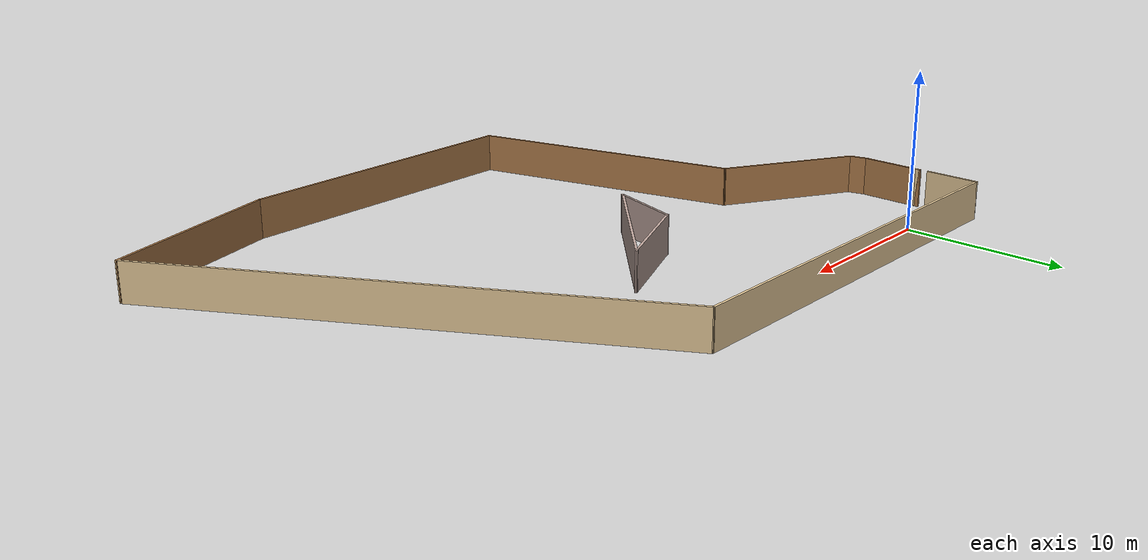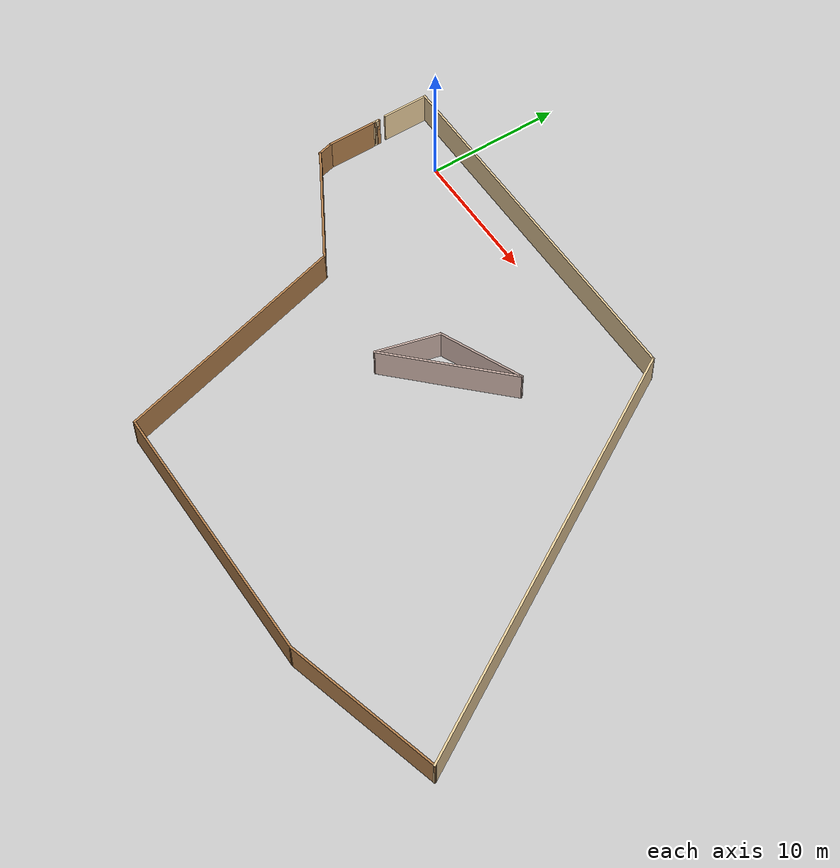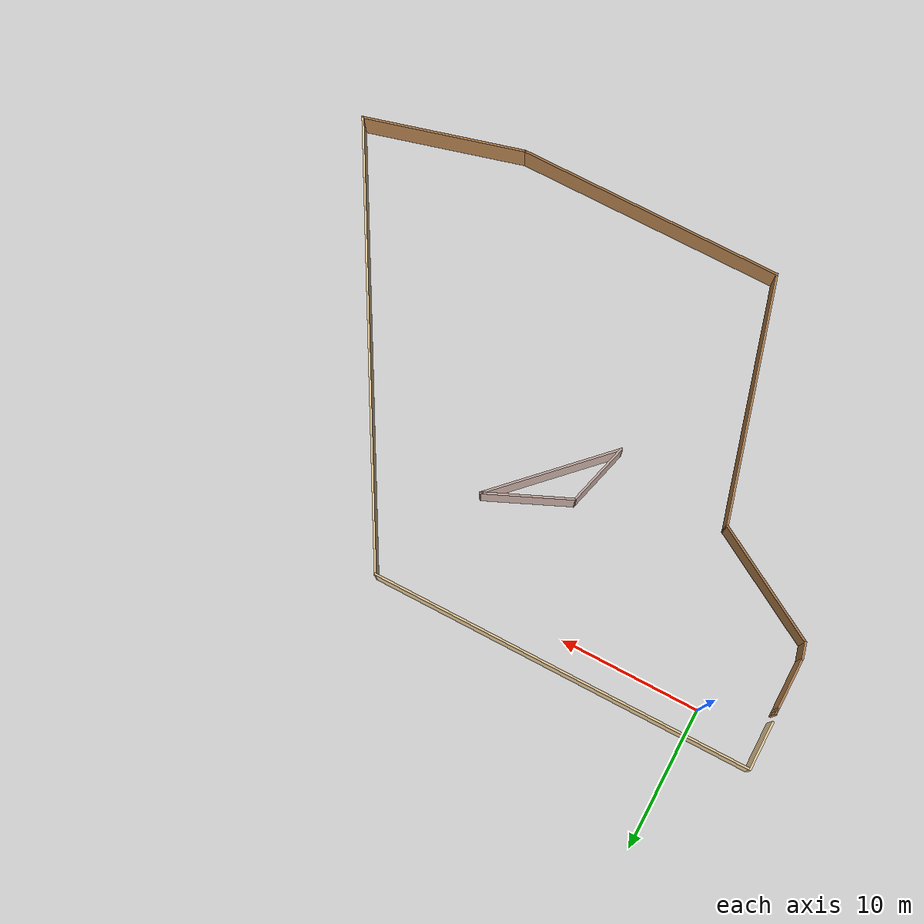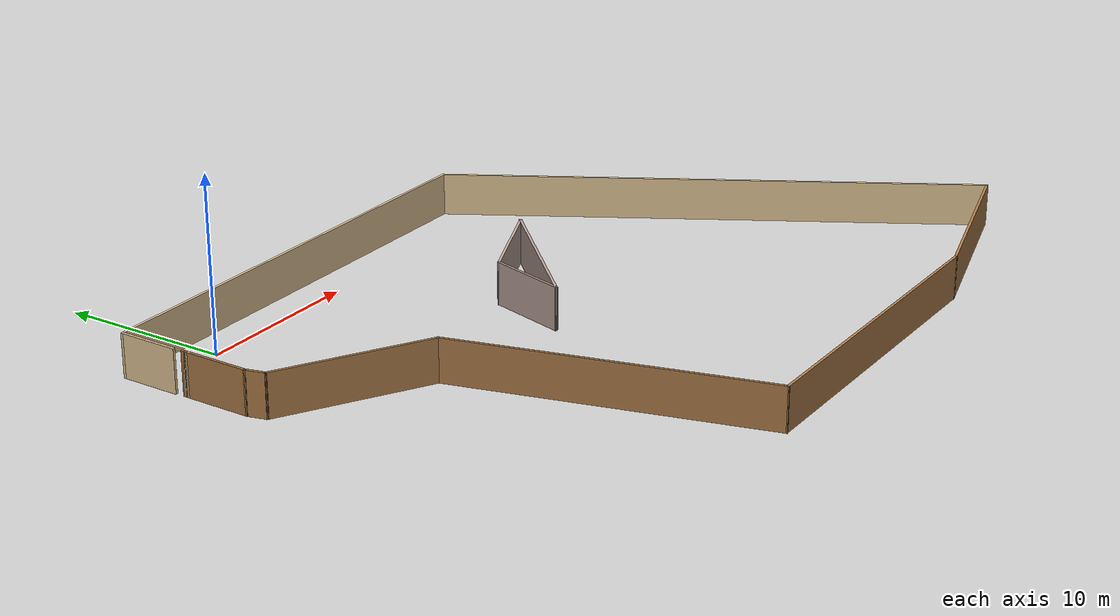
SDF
<?xml version='1.0'?>
<sdf version='1.7'>
  <model name='pigeonHead-shaped-room'>
    <pose>17.1981 -13.3504 0 0 -0 0</pose>
    <link name='Wall_0'>
      <collision name='Wall_0_Collision'>
        <geometry>
          <box>
            <size>3.5 0.15 2.5</size>
          </box>
        </geometry>
        <pose>0 0 1.25 0 -0 0</pose>
      </collision>
      <visual name='Wall_0_Visual'>
        <pose>0 0 1.25 0 -0 0</pose>
        <geometry>
          <box>
            <size>3.5 0.15 2.5</size>
          </box>
        </geometry>
        <material>
          <script>
            <uri>file://media/materials/scripts/gazebo.material</uri>
            <name>Gazebo/Grey</name>
          </script>
          <ambient>0.921569 0.807843 0.615686 1</ambient>
        </material>
        <meta>
          <layer>0</layer>
        </meta>
      </visual>
      <pose>-21.7137 13.7206 0 0 -0 1.5708</pose>
    </link>
    <link name='Wall_1'>
      <collision name='Wall_1_Collision'>
        <geometry>
          <box>
            <size>27.5 0.15 2.5</size>
          </box>
        </geometry>
        <pose>0 0 1.25 0 -0 0</pose>
      </collision>
      <visual name='Wall_1_Visual'>
        <pose>0 0 1.25 0 -0 0</pose>
        <geometry>
          <box>
            <size>27.5 0.15 2.5</size>
          </box>
        </geometry>
        <material>
          <script>
            <uri>file://media/materials/scripts/gazebo.material</uri>
            <name>Gazebo/Grey</name>
          </script>
          <ambient>0.921569 0.807843 0.615686 1</ambient>
        </material>
        <meta>
          <layer>0</layer>
        </meta>
      </visual>
      <pose>-8.03873 15.3956 0 0 -0 0</pose>
    </link>
    <link name='Wall_10'>
      <collision name='Wall_10_Collision'>
        <geometry>
          <box>
            <size>0.25 0.15 2.5</size>
          </box>
        </geometry>
        <pose>0 0 1.25 0 -0 0</pose>
      </collision>
      <visual name='Wall_10_Visual'>
        <pose>0 0 1.25 0 -0 0</pose>
        <geometry>
          <box>
            <size>0.25 0.15 2.5</size>
          </box>
        </geometry>
        <material>
          <script>
            <uri>file://media/materials/scripts/gazebo.material</uri>
            <name>Gazebo/Wood</name>
          </script>
          <ambient>0.921569 0.807843 0.615686 1</ambient>
        </material>
        <meta>
          <layer>0</layer>
        </meta>
      </visual>
      <pose>-21.6539 11.1981 0 0 -0 1.5708</pose>
    </link>
    <link name='Wall_11'>
      <collision name='Wall_11_Collision'>
        <geometry>
          <box>
            <size>0.25 0.15 2.5</size>
          </box>
        </geometry>
        <pose>0 0 1.25 0 -0 0</pose>
      </collision>
      <visual name='Wall_11_Visual'>
        <pose>0 0 1.25 0 -0 0</pose>
        <geometry>
          <box>
            <size>0.25 0.15 2.5</size>
          </box>
        </geometry>
        <material>
          <script>
            <uri>file://media/materials/scripts/gazebo.material</uri>
            <name>Gazebo/Grey</name>
          </script>
          <ambient>0.921569 0.807843 0.615686 1</ambient>
        </material>
        <meta>
          <layer>0</layer>
        </meta>
      </visual>
      <pose>-21.6539 11.2981 0 0 -0 1.5708</pose>
    </link>
    <link name='Wall_12'>
      <collision name='Wall_12_Collision'>
        <geometry>
          <box>
            <size>0.25 0.15 2.5</size>
          </box>
        </geometry>
        <pose>0 0 1.25 0 -0 0</pose>
      </collision>
      <visual name='Wall_12_Visual'>
        <pose>0 0 1.25 0 -0 0</pose>
        <geometry>
          <box>
            <size>0.25 0.15 2.5</size>
          </box>
        </geometry>
        <material>
          <script>
            <uri>file://media/materials/scripts/gazebo.material</uri>
            <name>Gazebo/Wood</name>
          </script>
          <ambient>0.921569 0.807843 0.615686 1</ambient>
        </material>
        <meta>
          <layer>0</layer>
        </meta>
      </visual>
      <pose>-21.6539 11.3981 0 0 -0 1.5708</pose>
    </link>
    <link name='Wall_14'>
      <collision name='Wall_14_Collision'>
        <geometry>
          <box>
            <size>4.75 0.15 2.5</size>
          </box>
        </geometry>
        <pose>0 0 1.25 0 -0 0</pose>
      </collision>
      <visual name='Wall_14_Visual'>
        <pose>0 0 1.25 0 -0 0</pose>
        <geometry>
          <box>
            <size>4.75 0.15 2.5</size>
          </box>
        </geometry>
        <material>
          <script>
            <uri>file://media/materials/scripts/gazebo.material</uri>
            <name>Gazebo/Grey</name>
          </script>
          <ambient>0.760784 0.662745 0.627451 1</ambient>
        </material>
        <meta>
          <layer>0</layer>
        </meta>
      </visual>
      <pose>-4.33739 2.65717 0 0 -0 -1.8326</pose>
    </link>
    <link name='Wall_15'>
      <collision name='Wall_15_Collision'>
        <geometry>
          <box>
            <size>10 0.15 2.5</size>
          </box>
        </geometry>
        <pose>0 0 1.25 0 -0 0</pose>
      </collision>
      <visual name='Wall_15_Visual'>
        <pose>0 0 1.25 0 -0 0</pose>
        <geometry>
          <box>
            <size>10 0.15 2.5</size>
          </box>
        </geometry>
        <material>
          <script>
            <uri>file://media/materials/scripts/gazebo.material</uri>
            <name>Gazebo/Grey</name>
          </script>
          <ambient>0.760784 0.662745 0.627451 1</ambient>
        </material>
        <meta>
          <layer>0</layer>
        </meta>
      </visual>
      <pose>-1.45017 3.91805 0 0 -0 0.785398</pose>
    </link>
    <link name='Wall_16'>
      <collision name='Wall_16_Collision'>
        <geometry>
          <box>
            <size>6.45105 0.15 2.5</size>
          </box>
        </geometry>
        <pose>0 0 1.25 0 -0 0</pose>
      </collision>
      <visual name='Wall_16_Visual'>
        <pose>0 0 1.25 0 -0 0</pose>
        <geometry>
          <box>
            <size>6.45105 0.15 2.5</size>
          </box>
        </geometry>
        <material>
          <script>
            <uri>file://media/materials/scripts/gazebo.material</uri>
            <name>Gazebo/Grey</name>
          </script>
          <ambient>0.760784 0.662745 0.627451 1</ambient>
        </material>
        <meta>
          <layer>0</layer>
        </meta>
      </visual>
      <pose>-0.854887 6.13968 0 0 -0 -2.72985</pose>
    </link>
    <link name='Wall_2'>
      <collision name='Wall_2_Collision'>
        <geometry>
          <box>
            <size>32.25 0.15 2.5</size>
          </box>
        </geometry>
        <pose>0 0 1.25 0 -0 0</pose>
      </collision>
      <visual name='Wall_2_Visual'>
        <pose>0 0 1.25 0 -0 0</pose>
        <geometry>
          <box>
            <size>32.25 0.15 2.5</size>
          </box>
        </geometry>
        <material>
          <script>
            <uri>file://media/materials/scripts/gazebo.material</uri>
            <name>Gazebo/Grey</name>
          </script>
          <ambient>0.921569 0.807843 0.615686 1</ambient>
        </material>
        <meta>
          <layer>0</layer>
        </meta>
      </visual>
      <pose>13.6613 1.49585 0 0 -0 -1.0472</pose>
    </link>
    <link name='Wall_3'>
      <collision name='Wall_3_Collision'>
        <geometry>
          <box>
            <size>11.75 0.15 2.5</size>
          </box>
        </geometry>
        <pose>0 0 1.25 0 -0 0</pose>
      </collision>
      <visual name='Wall_3_Visual'>
        <pose>0 0 1.25 0 -0 0</pose>
        <geometry>
          <box>
            <size>11.75 0.15 2.5</size>
          </box>
        </geometry>
        <material>
          <script>
            <uri>file://media/materials/scripts/gazebo.material</uri>
            <name>Gazebo/Wood</name>
          </script>
          <ambient>0.921569 0.807843 0.615686 1</ambient>
        </material>
        <meta>
          <layer>0</layer>
        </meta>
      </visual>
      <pose>16.0839 -13.905 0 0 -0 -2.87979</pose>
    </link>
    <link name='Wall_4'>
      <collision name='Wall_4_Collision'>
        <geometry>
          <box>
            <size>19.5 0.15 2.5</size>
          </box>
        </geometry>
        <pose>0 0 1.25 0 -0 0</pose>
      </collision>
      <visual name='Wall_4_Visual'>
        <pose>0 0 1.25 0 -0 0</pose>
        <geometry>
          <box>
            <size>19.5 0.15 2.5</size>
          </box>
        </geometry>
        <material>
          <script>
            <uri>file://media/materials/scripts/gazebo.material</uri>
            <name>Gazebo/Wood</name>
          </script>
          <ambient>0.921569 0.807843 0.615686 1</ambient>
        </material>
        <meta>
          <layer>0</layer>
        </meta>
      </visual>
      <pose>0.806534 -15.4062 0 0 -0 3.14159</pose>
    </link>
    <link name='Wall_5'>
      <collision name='Wall_5_Collision'>
        <geometry>
          <box>
            <size>18 0.15 2.5</size>
          </box>
        </geometry>
        <pose>0 0 1.25 0 -0 0</pose>
      </collision>
      <visual name='Wall_5_Visual'>
        <pose>0 0 1.25 0 -0 0</pose>
        <geometry>
          <box>
            <size>18 0.15 2.5</size>
          </box>
        </geometry>
        <material>
          <script>
            <uri>file://media/materials/scripts/gazebo.material</uri>
            <name>Gazebo/Wood</name>
          </script>
          <ambient>0.921569 0.807843 0.615686 1</ambient>
        </material>
        <meta>
          <layer>0</layer>
        </meta>
      </visual>
      <pose>-11.1784 -6.78527 0 0 -0 1.8326</pose>
    </link>
    <link name='Wall_6'>
      <collision name='Wall_6_Collision'>
        <geometry>
          <box>
            <size>9.25 0.15 2.5</size>
          </box>
        </geometry>
        <pose>0 0 1.25 0 -0 0</pose>
      </collision>
      <visual name='Wall_6_Visual'>
        <pose>0 0 1.25 0 -0 0</pose>
        <geometry>
          <box>
            <size>9.25 0.15 2.5</size>
          </box>
        </geometry>
        <material>
          <script>
            <uri>file://media/materials/scripts/gazebo.material</uri>
            <name>Gazebo/Wood</name>
          </script>
          <ambient>0.921569 0.807843 0.615686 1</ambient>
        </material>
        <meta>
          <layer>0</layer>
        </meta>
      </visual>
      <pose>-17.4288 4.11062 0 0 -0 2.61799</pose>
    </link>
    <link name='Wall_7'>
      <collision name='Wall_7_Collision'>
        <geometry>
          <box>
            <size>1.25 0.15 2.5</size>
          </box>
        </geometry>
        <pose>0 0 1.25 0 -0 0</pose>
      </collision>
      <visual name='Wall_7_Visual'>
        <pose>0 0 1.25 0 -0 0</pose>
        <geometry>
          <box>
            <size>1.25 0.15 2.5</size>
          </box>
        </geometry>
        <material>
          <script>
            <uri>file://media/materials/scripts/gazebo.material</uri>
            <name>Gazebo/Wood</name>
          </script>
          <ambient>0.921569 0.807843 0.615686 1</ambient>
        </material>
        <meta>
          <layer>0</layer>
        </meta>
      </visual>
      <pose>-21.5116 6.91688 0 0 -0 1.8326</pose>
    </link>
    <link name='Wall_8'>
      <collision name='Wall_8_Collision'>
        <geometry>
          <box>
            <size>3.75 0.15 2.5</size>
          </box>
        </geometry>
        <pose>0 0 1.25 0 -0 0</pose>
      </collision>
      <visual name='Wall_8_Visual'>
        <pose>0 0 1.25 0 -0 0</pose>
        <geometry>
          <box>
            <size>3.75 0.15 2.5</size>
          </box>
        </geometry>
        <material>
          <script>
            <uri>file://media/materials/scripts/gazebo.material</uri>
            <name>Gazebo/Wood</name>
          </script>
          <ambient>0.921569 0.807843 0.615686 1</ambient>
        </material>
        <meta>
          <layer>0</layer>
        </meta>
      </visual>
      <pose>-21.6539 9.24814 0 0 -0 1.5708</pose>
    </link>
    <link name='Wall_9'>
      <collision name='Wall_9_Collision'>
        <geometry>
          <box>
            <size>0.25 0.15 2.5</size>
          </box>
        </geometry>
        <pose>0 0 1.25 0 -0 0</pose>
      </collision>
      <visual name='Wall_9_Visual'>
        <pose>0 0 1.25 0 -0 0</pose>
        <geometry>
          <box>
            <size>0.25 0.15 2.5</size>
          </box>
        </geometry>
        <material>
          <script>
            <uri>file://media/materials/scripts/gazebo.material</uri>
            <name>Gazebo/Grey</name>
          </script>
          <ambient>0.921569 0.807843 0.615686 1</ambient>
        </material>
        <meta>
          <layer>0</layer>
        </meta>
      </visual>
      <pose>-21.6539 11.0981 0 0 -0 1.5708</pose>
    </link>
    <static>1</static>
  </model>
</sdf>
